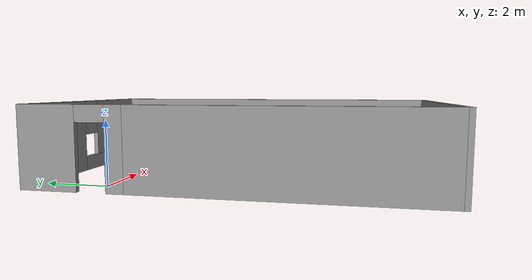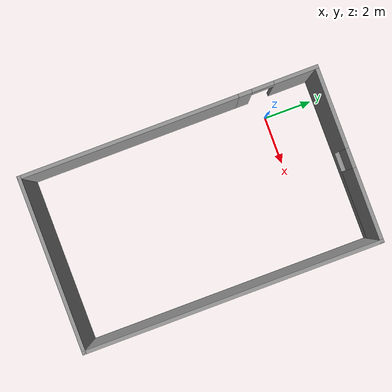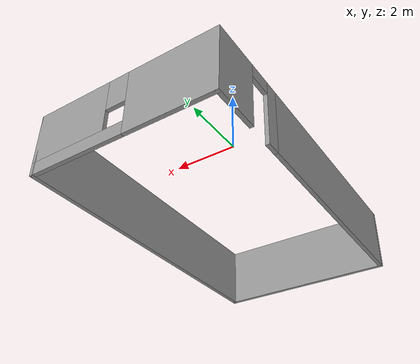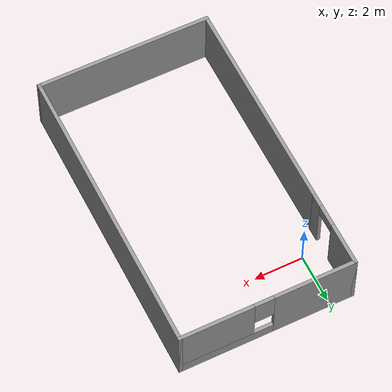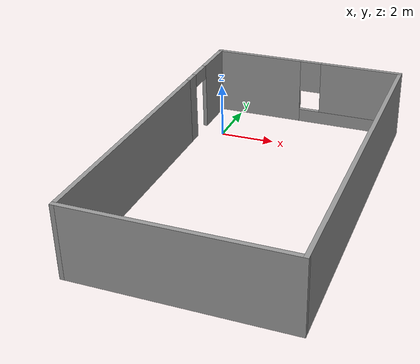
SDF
<?xml version='1.0'?>
<sdf version='1.7'>
  <model name='Simple_House'>
    <pose>2.64 -3.87 0 0 -0 0</pose>
    <link name='Wall_0'>
      <pose>-3.55 4.5 0 0 -0 1.5708</pose>
      <visual name='Wall_0_Visual_0'>
        <pose>-1.35509 0 1.25 0 -0 0</pose>
        <geometry>
          <box>
            <size>0.539819 0.15 2.5</size>
          </box>
        </geometry>
        <material>
          <script>
            <uri>file://media/materials/scripts/gazebo.material</uri>
            <name>Gazebo/Grey</name>
          </script>
          <ambient>1 1 1 1</ambient>
        </material>
        <meta>
          <layer>0</layer>
        </meta>
      </visual>
      <collision name='Wall_0_Collision_0'>
        <geometry>
          <box>
            <size>0.539819 0.15 2.5</size>
          </box>
        </geometry>
        <pose>-1.35509 0 1.25 0 -0 0</pose>
      </collision>
      <visual name='Wall_0_Visual_1'>
        <pose>0.719909 0 1.25 0 -0 0</pose>
        <geometry>
          <box>
            <size>1.81018 0.15 2.5</size>
          </box>
        </geometry>
        <material>
          <script>
            <uri>file://media/materials/scripts/gazebo.material</uri>
            <name>Gazebo/Grey</name>
          </script>
          <ambient>1 1 1 1</ambient>
        </material>
        <meta>
          <layer>0</layer>
        </meta>
      </visual>
      <collision name='Wall_0_Collision_1'>
        <geometry>
          <box>
            <size>1.81018 0.15 2.5</size>
          </box>
        </geometry>
        <pose>0.719909 0 1.25 0 -0 0</pose>
      </collision>
      <visual name='Wall_0_Visual_2'>
        <pose>-0.635181 0 2.25 0 -0 0</pose>
        <geometry>
          <box>
            <size>0.9 0.15 0.5</size>
          </box>
        </geometry>
        <material>
          <script>
            <uri>file://media/materials/scripts/gazebo.material</uri>
            <name>Gazebo/Grey</name>
          </script>
          <ambient>1 1 1 1</ambient>
        </material>
        <meta>
          <layer>0</layer>
        </meta>
      </visual>
      <collision name='Wall_0_Collision_2'>
        <geometry>
          <box>
            <size>0.9 0.15 0.5</size>
          </box>
        </geometry>
        <pose>-0.635181 0 2.25 0 -0 0</pose>
      </collision>
    </link>
    <link name='Wall_1'>
      <pose>-0 6.05 0 0 -0 0</pose>
      <visual name='Wall_1_Visual_0'>
        <pose>-1.93219 0 1.25 0 -0 0</pose>
        <geometry>
          <box>
            <size>3.38561 0.15 2.5</size>
          </box>
        </geometry>
        <material>
          <script>
            <uri>file://media/materials/scripts/gazebo.material</uri>
            <name>Gazebo/Grey</name>
          </script>
          <ambient>1 1 1 1</ambient>
        </material>
        <meta>
          <layer>0</layer>
        </meta>
      </visual>
      <collision name='Wall_1_Collision_0'>
        <geometry>
          <box>
            <size>3.38561 0.15 2.5</size>
          </box>
        </geometry>
        <pose>-1.93219 0 1.25 0 -0 0</pose>
      </collision>
      <visual name='Wall_1_Visual_1'>
        <pose>1.69281 0 0.25 0 -0 0</pose>
        <geometry>
          <box>
            <size>3.86439 0.15 0.5</size>
          </box>
        </geometry>
        <material>
          <script>
            <uri>file://media/materials/scripts/gazebo.material</uri>
            <name>Gazebo/Grey</name>
          </script>
          <ambient>1 1 1 1</ambient>
        </material>
        <meta>
          <layer>0</layer>
        </meta>
      </visual>
      <collision name='Wall_1_Collision_1'>
        <geometry>
          <box>
            <size>3.86439 0.15 0.5</size>
          </box>
        </geometry>
        <pose>1.69281 0 0.25 0 -0 0</pose>
      </collision>
      <visual name='Wall_1_Visual_2'>
        <pose>2.09281 0 1.5 0 -0 0</pose>
        <geometry>
          <box>
            <size>3.06439 0.15 2</size>
          </box>
        </geometry>
        <material>
          <script>
            <uri>file://media/materials/scripts/gazebo.material</uri>
            <name>Gazebo/Grey</name>
          </script>
          <ambient>1 1 1 1</ambient>
        </material>
        <meta>
          <layer>0</layer>
        </meta>
      </visual>
      <collision name='Wall_1_Collision_2'>
        <geometry>
          <box>
            <size>3.06439 0.15 2</size>
          </box>
        </geometry>
        <pose>2.09281 0 1.5 0 -0 0</pose>
      </collision>
      <visual name='Wall_1_Visual_3'>
        <pose>0.160613 0 1.9 0 -0 0</pose>
        <geometry>
          <box>
            <size>0.8 0.15 1.2</size>
          </box>
        </geometry>
        <material>
          <script>
            <uri>file://media/materials/scripts/gazebo.material</uri>
            <name>Gazebo/Grey</name>
          </script>
          <ambient>1 1 1 1</ambient>
        </material>
        <meta>
          <layer>0</layer>
        </meta>
      </visual>
      <collision name='Wall_1_Collision_3'>
        <geometry>
          <box>
            <size>0.8 0.15 1.2</size>
          </box>
        </geometry>
        <pose>0.160613 0 1.9 0 -0 0</pose>
      </collision>
    </link>
    <link name='Wall_2'>
      <collision name='Wall_2_Collision'>
        <geometry>
          <box>
            <size>12.25 0.15 2.5</size>
          </box>
        </geometry>
        <pose>0 0 1.25 0 -0 0</pose>
      </collision>
      <visual name='Wall_2_Visual'>
        <pose>0 0 1.25 0 -0 0</pose>
        <geometry>
          <box>
            <size>12.25 0.15 2.5</size>
          </box>
        </geometry>
        <material>
          <script>
            <uri>file://media/materials/scripts/gazebo.material</uri>
            <name>Gazebo/Grey</name>
          </script>
          <ambient>1 1 1 1</ambient>
        </material>
        <meta>
          <layer>0</layer>
        </meta>
      </visual>
      <pose>3.55 0 0 0 -0 -1.5708</pose>
    </link>
    <link name='Wall_3'>
      <collision name='Wall_3_Collision'>
        <geometry>
          <box>
            <size>7.25 0.15 2.5</size>
          </box>
        </geometry>
        <pose>0 0 1.25 0 -0 0</pose>
      </collision>
      <visual name='Wall_3_Visual'>
        <pose>0 0 1.25 0 -0 0</pose>
        <geometry>
          <box>
            <size>7.25 0.15 2.5</size>
          </box>
        </geometry>
        <material>
          <script>
            <uri>file://media/materials/scripts/gazebo.material</uri>
            <name>Gazebo/Grey</name>
          </script>
          <ambient>1 1 1 1</ambient>
        </material>
        <meta>
          <layer>0</layer>
        </meta>
      </visual>
      <pose>-0 -6.05 0 0 -0 3.14159</pose>
    </link>
    <link name='Wall_4'>
      <collision name='Wall_4_Collision'>
        <geometry>
          <box>
            <size>9 0.15 2.5</size>
          </box>
        </geometry>
        <pose>0 0 1.25 0 -0 0</pose>
      </collision>
      <visual name='Wall_4_Visual'>
        <pose>0 0 1.25 0 -0 0</pose>
        <geometry>
          <box>
            <size>9 0.15 2.5</size>
          </box>
        </geometry>
        <material>
          <script>
            <uri>file://media/materials/scripts/gazebo.material</uri>
            <name>Gazebo/Grey</name>
          </script>
          <ambient>1 1 1 1</ambient>
        </material>
        <meta>
          <layer>0</layer>
        </meta>
      </visual>
      <pose>-3.55 -1.625 0 0 -0 1.5708</pose>
    </link>
    <static>1</static>
  </model>
</sdf>
